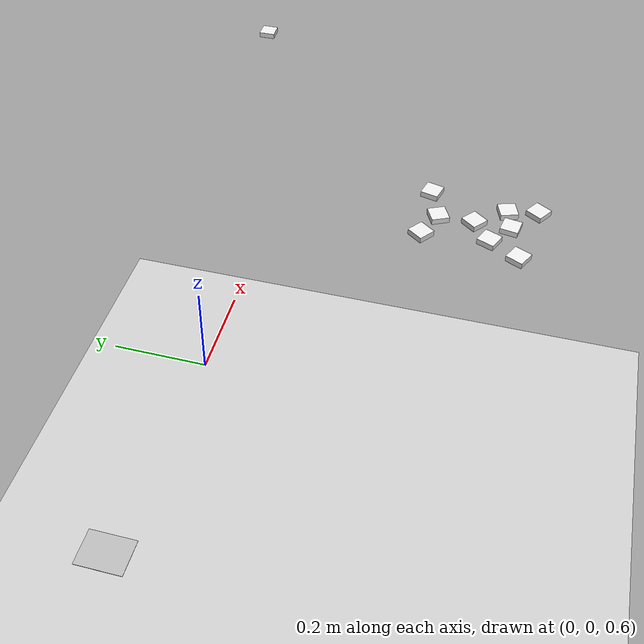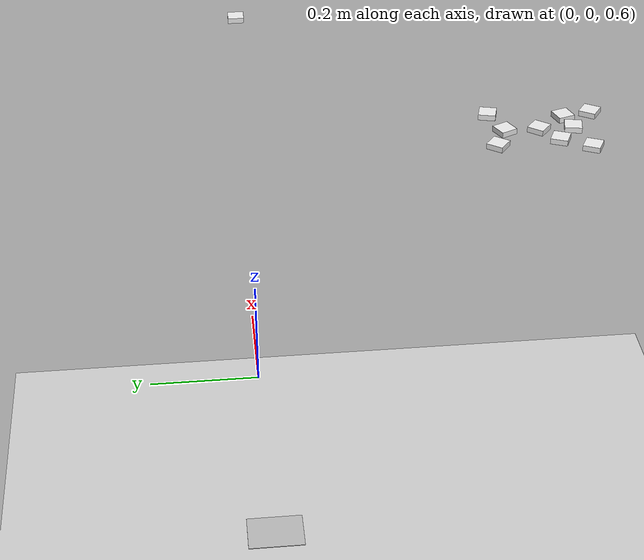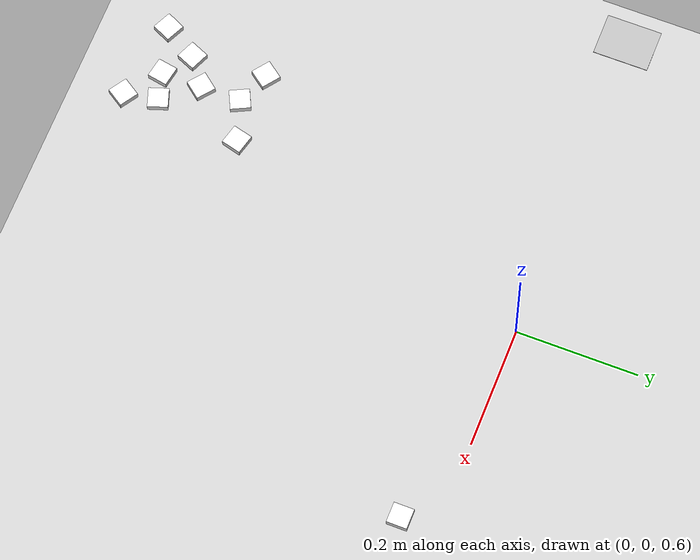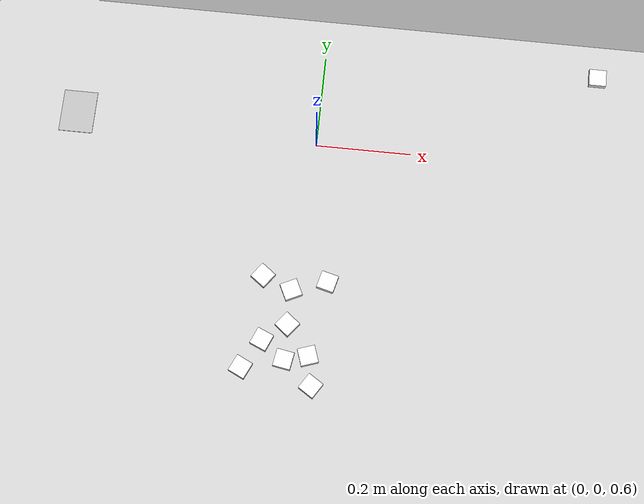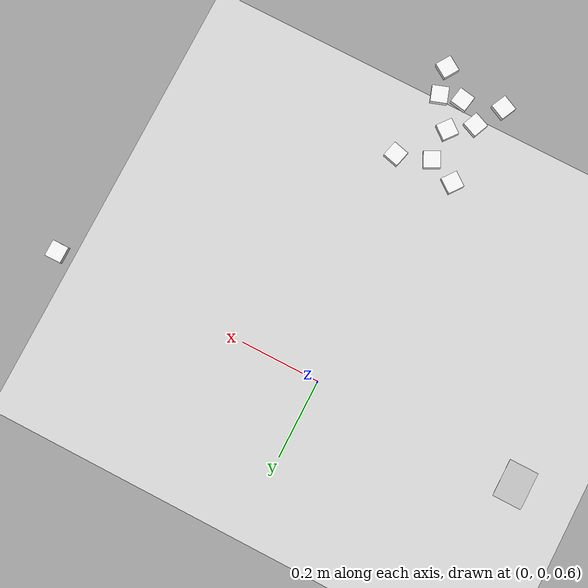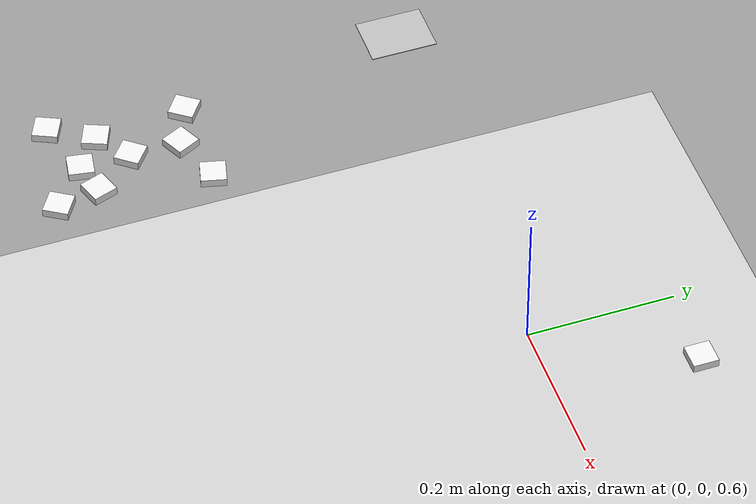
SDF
<sdf version="1.4">
 <world name="default">
  <include><uri>model://ground_plane</uri></include>
  <include><uri>model://sun</uri></include>
  <include><uri>model://checkerboard</uri><name>checkerboard</name><pose>-1.0 0 -0.33 0 0 0.0</pose></include>
  <include><uri>model://demo_cube</uri><name>demo_cube1</name><pose>0.5 0 1.1 0 0 0.0</pose></include>
  <include><uri>model://demo_cube</uri><name>demo_cube2</name><pose>0 -0.5 1.1 0 0 0.9</pose></include>
  <include><uri>model://demo_cube</uri><name>demo_cube3</name><pose>0 -0.56 1.1 0 0 1.4</pose></include>
  <include><uri>model://demo_cube</uri><name>demo_cube4</name><pose>0 -0.44 1.1 0 0 0.45</pose></include>
  <include><uri>model://demo_cube</uri><name>demo_cube5</name><pose>0.05 -0.6 1.1 0 0 1.0</pose></include>
  <include><uri>model://demo_cube</uri><name>demo_cube6</name><pose>0.04 -0.55 1.1 0 0 1.9</pose></include>
  <include><uri>model://demo_cube</uri><name>demo_cube7</name><pose>0.06 -0.42 1.1 0 0 -0.25</pose></include>
  <include><uri>model://demo_cube</uri><name>demo_cube8</name><pose>-0.04 -0.53 1.1 0 0 -0.4</pose></include>
  <include><uri>model://demo_cube</uri><name>demo_cube9</name><pose>-0.07 -0.58 1.1 0 0 2.7</pose></include>
  <include><uri>model://demo_cube</uri><name>demo_cube10</name><pose>-0.05 -0.42 1.1 0 0 2.5</pose></include>
 </world>
</sdf>

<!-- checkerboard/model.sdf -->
<sdf version="1.4">
  <model name="checkerboard">
    <link name="link">
      <pose>0.5 0 1.0 0 0 0</pose>
      <inertial>
        <mass>1</mass>
        <inertia>
          <ixx>0.0</ixx>
          <ixy>0.0</ixy>
          <ixz>0.0</ixz>
          <iyy>0.0</iyy>
          <iyz>0.0</iyz>
          <izz>0.1</izz>
        </inertia>
      </inertial>
      <collision name="collision">
        <geometry>
          <box>
            <size>.07 .09 .001</size>
          </box>
        </geometry>
      </collision>
      <visual name="visual">
        <geometry>
          <box>
            <size>.07 .09 .001</size>
          </box>
        </geometry>
        <material>
          <script>
            <uri>model://checkerboard/materials/scripts</uri>
            <uri>model://checkerboard/materials/textures</uri>
            <name>checkerboard</name>
          </script>
        </material>
      </visual>
    </link>
    <static>1</static>
  </model>
</sdf>

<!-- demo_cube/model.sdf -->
<sdf version='1.4'>
  <model name="demo_cube">
      <static>0</static>
      <link name='link'>
        <inertial>
          <mass>0.25</mass>
          <inertia>
            <ixx>0.001</ixx>
            <ixy>0.000000</ixy>
            <ixz>0.000000</ixz>
            <iyy>0.001</iyy>
            <iyz>0.000000</iyz>
            <izz>0.001</izz>
          </inertia>
        </inertial>
        <collision name='collision'>
          <geometry>
            <box>
              <size>0.030 0.030 0.01</size>
            </box>
          </geometry>
          <surface>
            <friction>
              <ode>
                <mu>30.0</mu>
                <mu2>30.0</mu2>
              </ode>
            </friction>
            <contact>
              <ode>
                <kp>1000000.0</kp>
                <kd>100.0</kd>
                <max_vel>1.0</max_vel>
                <min_depth>0.002</min_depth>
              </ode>
            </contact>
          </surface>
        </collision>
        <visual name='visual'>
          <geometry>
            <box>
              <size>0.030 0.030 0.01</size>
            </box>
          </geometry>
          <material>
            <script>
              <uri>file://media/materials/scripts/gazebo.material</uri>
              <name>Gazebo/White</name>
            </script>
          </material>
        </visual>
        <velocity_decay>
          <linear>0.000000</linear>
          <angular>0.000000</angular>
        </velocity_decay>
        <self_collide>0</self_collide>
        <kinematic>0</kinematic>
        <gravity>1</gravity>
      </link>
  </model>
</sdf>
